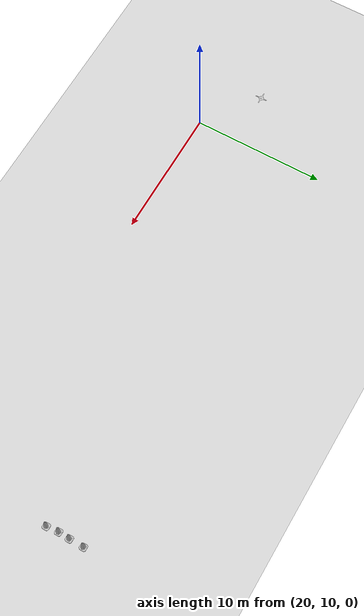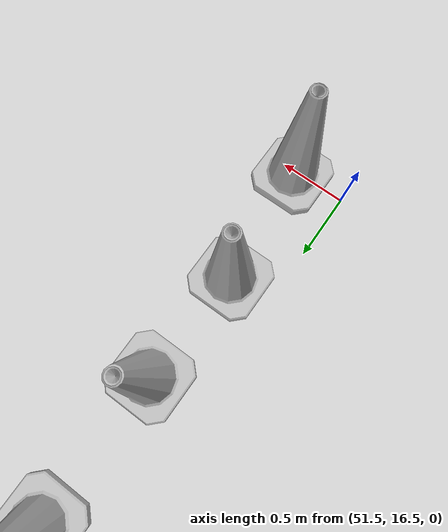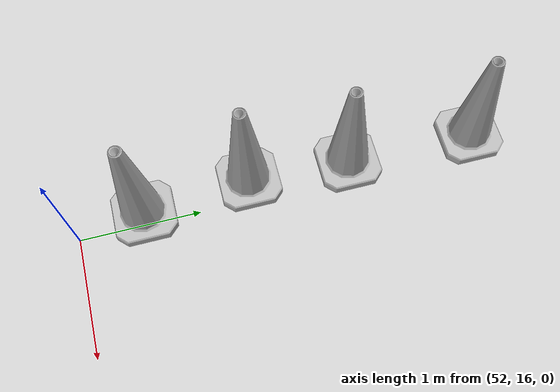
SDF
<sdf version="1.6">
 <world name="default">
  <light name="sun" type="directional">
   <pose>0 0 10 0 -0 0</pose>
   <diffuse>0.8 0.8 0.8 1</diffuse>
   <specular>0.2 0.2 0.2 1</specular>
   <attenuation>
    <range>1000</range>
    <constant>0.9</constant>
    <linear>0.01</linear>
    <quadratic>0.001</quadratic>
   </attenuation>
   <direction>-0.5 0.1 -0.9</direction>
  </light>
  <model name="ground_plane">
   <static>1</static>
   <link name="link">
    <collision name="collision">
     <geometry><plane><normal>0 0 1</normal><size>100 100</size></plane></geometry>
     <surface>
      <contact><collide_bitmask>65535</collide_bitmask></contact>
      <friction><ode><mu>100</mu><mu2>50</mu2></ode></friction>
     </surface>
    </collision>
    <visual name="visual">
     <cast_shadows>0</cast_shadows>
     <geometry><plane><normal>0 0 1</normal><size>100 100</size></plane></geometry>
     <material>
      <script><uri>file://media/materials/scripts/gazebo.material</uri><name>Gazebo/Grey</name></script>
     </material>
    </visual>
   </link>
  </model>
  <gravity>0 0 -9.8</gravity>
  <magnetic_field>6e-06 2.3e-05 -4.2e-05</magnetic_field>
  <atmosphere type="adiabatic"/>
  <physics name="default_physics" default="0" type="ode">
   <max_step_size>0.001</max_step_size>
   <real_time_factor>1</real_time_factor>
   <real_time_update_rate>1000</real_time_update_rate>
  </physics>
  <scene><ambient>0.4 0.4 0.4 1</ambient><background>0.7 0.7 0.7 1</background><shadows>1</shadows></scene>
  <audio><device>default</device></audio>
  <spherical_coordinates>
   <surface_model>EARTH_WGS84</surface_model>
   <latitude_deg>0</latitude_deg>
   <longitude_deg>0</longitude_deg>
   <elevation>0</elevation>
   <heading_deg>0</heading_deg>
  </spherical_coordinates>
  <model name="cloverleaf_interchange">
   <static>1</static>
   <link name="link">
    <collision name="collision">
     <geometry>
      <mesh>
       <uri>model://cloverleaf_interchange/meshes/cloverleaf.obj</uri>
       <scale>0.0254 0.0254 0.0254</scale>
      </mesh>
     </geometry>
    </collision>
    <visual name="visual">
     <geometry>
      <mesh>
       <uri>model://cloverleaf_interchange/meshes/cloverleaf.obj</uri>
       <scale>0.0254 0.0254 0.0254</scale>
      </mesh>
     </geometry>
    </visual>
   </link>
   <pose>15.7973 13.2718 0 0 -0 0</pose>
  </model>
  <model name="Construction Cone">
   <link name="link">
    <collision name="collision">
     <geometry>
      <mesh><scale>10 10 10</scale><uri>model://construction_cone/meshes/construction_cone.dae</uri></mesh>
     </geometry>
    </collision>
    <visual name="visual">
     <geometry>
      <mesh><scale>10 10 10</scale><uri>model://construction_cone/meshes/construction_cone.dae</uri></mesh>
     </geometry>
    </visual>
    <inertial>
     <inertia><ixx>1</ixx><ixy>0</ixy><ixz>0</ixz><iyy>1</iyy><iyz>0</iyz><izz>1</izz></inertia>
     <mass>1</mass>
    </inertial>
   </link>
   <pose>51.8721 19.3915 -1e-05 -0 -0 -0</pose>
  </model>
  <model name="Construction Cone_0">
   <link name="link">
    <collision name="collision">
     <geometry>
      <mesh><scale>10 10 10</scale><uri>model://construction_cone/meshes/construction_cone.dae</uri></mesh>
     </geometry>
    </collision>
    <visual name="visual">
     <geometry>
      <mesh><scale>10 10 10</scale><uri>model://construction_cone/meshes/construction_cone.dae</uri></mesh>
     </geometry>
    </visual>
    <inertial>
     <inertia><ixx>1</ixx><ixy>0</ixy><ixz>0</ixz><iyy>1</iyy><iyz>0</iyz><izz>1</izz></inertia>
     <mass>1</mass>
    </inertial>
   </link>
   <pose>51.8624 18.3064 -0 0 -0 0</pose>
  </model>
  <model name="Construction Cone_1">
   <link name="link">
    <collision name="collision">
     <geometry>
      <mesh><scale>10 10 10</scale><uri>model://construction_cone/meshes/construction_cone.dae</uri></mesh>
     </geometry>
    </collision>
    <visual name="visual">
     <geometry>
      <mesh><scale>10 10 10</scale><uri>model://construction_cone/meshes/construction_cone.dae</uri></mesh>
     </geometry>
    </visual>
    <inertial>
     <inertia><ixx>1</ixx><ixy>0</ixy><ixz>0</ixz><iyy>1</iyy><iyz>0</iyz><izz>1</izz></inertia>
     <mass>1</mass>
    </inertial>
   </link>
   <pose>51.8198 17.4526 -8e-06 0 1e-06 0</pose>
  </model>
  <model name="Construction Cone_2">
   <link name="link">
    <collision name="collision">
     <geometry>
      <mesh><scale>10 10 10</scale><uri>model://construction_cone/meshes/construction_cone.dae</uri></mesh>
     </geometry>
    </collision>
    <visual name="visual">
     <geometry>
      <mesh><scale>10 10 10</scale><uri>model://construction_cone/meshes/construction_cone.dae</uri></mesh>
     </geometry>
    </visual>
    <inertial>
     <inertia><ixx>1</ixx><ixy>0</ixy><ixz>0</ixz><iyy>1</iyy><iyz>0</iyz><izz>1</izz></inertia>
     <mass>1</mass>
    </inertial>
   </link>
   <pose>51.9014 16.5512 -8e-06 0 -0 0</pose>
  </model>
 </world>
</sdf>
